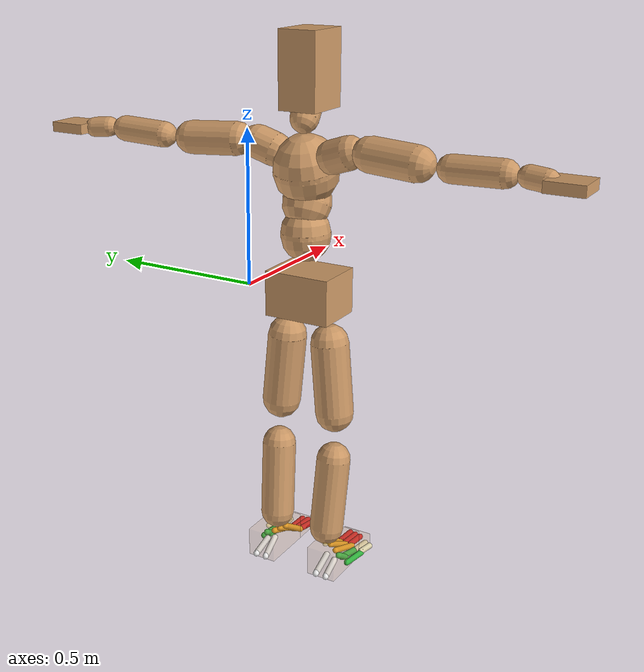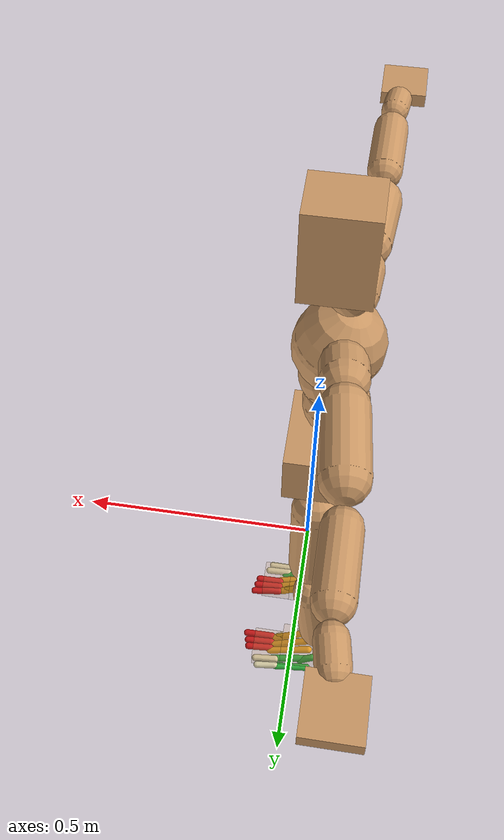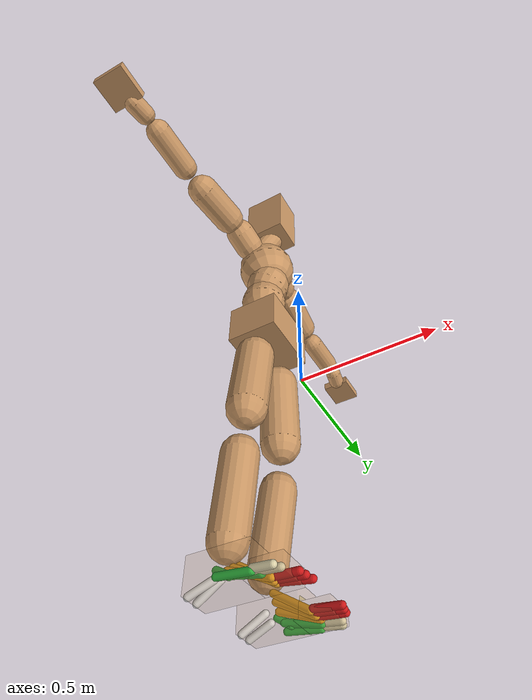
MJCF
<mujoco model="smpl_humanoid_foot_contact">
  <compiler coordinate="local" />
  <option
        timestep="0.001"
        integrator="implicitfast"
        solver="Newton"
        cone="elliptic"
        impratio="10"
        iterations="80"
        tolerance="1e-10"
        noslip_iterations="2"
    >
    <flag nativeccd="enable" multiccd="enable" />
  </option>
  <default>
    <default class="foot_bone_contact">
      <geom
                type="capsule"
                size="0.010"
                density="0"
                condim="6"
                contype="1"
                conaffinity="2"
                friction="1.1 0.03 0.002"
                solref="0.010 1"
                solimp="0.90 0.98 0.0015 0.5 2"
                margin="0.0005"
                rgba="0.10 0.45 0.85 1"
            />
    </default>
    <default class="foot_bone_visual">
      <geom
                type="capsule"
                size="0.008"
                density="0"
                contype="0"
                conaffinity="0"
                rgba="0.95 0.78 0.28 0.45"
            />
    </default>
    <default class="foot_touch_site">
      <site type="box" group="3" rgba="0.9 0.2 0.1 0.18" />
    </default>
  </default>
  <asset>
    <texture
            type="skybox"
            builtin="gradient"
            rgb1=".4 .5 .6"
            rgb2="0 0 0"
            width="100"
            height="100"
        />
    <texture
            builtin="flat"
            height="1278"
            mark="cross"
            markrgb="1 1 1"
            name="texgeom"
            random="0.01"
            rgb1="0.8 0.6 0.4"
            rgb2="0.8 0.6 0.4"
            type="cube"
            width="127"
        />
    <texture
            builtin="checker"
            height="100"
            name="texplane"
            rgb1="0 0 0"
            rgb2="0.8 0.8 0.8"
            type="2d"
            width="100"
        />
    <material
            name="MatPlane"
            reflectance="0.5"
            shininess="1"
            specular="1"
            texrepeat="60 60"
            texture="texplane"
        />
    <material name="geom" texture="texgeom" texuniform="true" />
  </asset>
  <worldbody>
    <light
            cutoff="100"
            diffuse="1 1 1"
            dir="-0 0 -1.3"
            directional="true"
            exponent="1"
            pos="0 0 1.3"
            specular=".1 .1 .1"
        />
    <body name="Pelvis" pos="-0.0018 -0.2233 0.0282">
      <geom
                type="box"
                pos="-0.0055 -0.0000 -0.0121"
                size="0.083 0.1069 0.0722"
                quat="1.0000 0.0000 0.0000 0.0000"
                density="1000"
                conaffinity="1"
                condim="3"
                contype="7"
                margin="0.001"
                rgba="0.8 0.6 .4 1"
            />
      <body name="L_Hip" pos="-0.0068 0.0695 -0.0914">
        <joint
                    name="L_Hip_x"
                    type="hinge"
                    pos="0 0 0"
                    axis="1 0 0"
                    stiffness="800"
                    damping="80"
                    armature="0.02"
                    range="-180.0000 180.0000"
                    limited="true"
                />
        <joint
                    name="L_Hip_y"
                    type="hinge"
                    pos="0 0 0"
                    axis="0 1 0"
                    stiffness="800"
                    damping="80"
                    armature="0.02"
                    range="-180.0000 180.0000"
                    limited="true"
                />
        <joint
                    name="L_Hip_z"
                    type="hinge"
                    pos="0 0 0"
                    axis="0 0 1"
                    stiffness="800"
                    damping="80"
                    armature="0.02"
                    range="-180.0000 180.0000"
                    limited="true"
                />
        <geom
                    type="capsule"
                    contype="1"
                    conaffinity="1"
                    density="2040.816327"
                    fromto="-0.0009 0.0069 -0.0750 -0.0036 0.0274 -0.3002"
                    size="0.0615"
                    condim="3"
                    margin="0.001"
                    rgba="0.8 0.6 .4 1"
                />
        <body name="L_Knee" pos="-0.0045 0.0343 -0.3752">
          <joint
                        name="L_Knee_x"
                        type="hinge"
                        pos="0 0 0"
                        axis="1 0 0"
                        stiffness="800"
                        damping="80"
                        armature="0.02"
                        range="-180.0000 180.0000"
                        limited="true"
                    />
          <joint
                        name="L_Knee_y"
                        type="hinge"
                        pos="0 0 0"
                        axis="0 1 0"
                        stiffness="800"
                        damping="80"
                        armature="0.02"
                        range="-180.0000 180.0000"
                        limited="true"
                    />
          <joint
                        name="L_Knee_z"
                        type="hinge"
                        pos="0 0 0"
                        axis="0 0 1"
                        stiffness="800"
                        damping="80"
                        armature="0.02"
                        range="-180.0000 180.0000"
                        limited="true"
                    />
          <geom
                        type="capsule"
                        contype="1"
                        conaffinity="1"
                        density="1234.567901"
                        fromto="-0.0087 -0.0027 -0.0796 -0.0350 -0.0109 -0.3184"
                        size="0.0541"
                        condim="3"
                        margin="0.001"
                        rgba="0.8 0.6 .4 1"
                    />
          <body name="L_Ankle" pos="-0.0437 -0.0136 -0.398">
            <joint
                            name="L_Ankle_x"
                            type="hinge"
                            pos="0 0 0"
                            axis="1 0 0"
                            stiffness="800"
                            damping="80"
                            armature="0.02"
                            range="-180.0000 180.0000"
                            limited="true"
                        />
            <joint
                            name="L_Ankle_y"
                            type="hinge"
                            pos="0 0 0"
                            axis="0 1 0"
                            stiffness="800"
                            damping="80"
                            armature="0.02"
                            range="-180.0000 180.0000"
                            limited="true"
                        />
            <joint
                            name="L_Ankle_z"
                            type="hinge"
                            pos="0 0 0"
                            axis="0 0 1"
                            stiffness="800"
                            damping="80"
                            armature="0.02"
                            range="-180.0000 180.0000"
                            limited="true"
                        />
            <geom
                            name="L_foot_inertial_visual"
                            type="box"
                            pos="0.0242 0.0233 -0.0239"
                            size="0.085 0.0483 0.0464"
                            quat="1.0000 0.0000 0.0000 0.0000"
                            density="1000"
                            conaffinity="0"
                            condim="3"
                            contype="0"
                            margin="0.001"
                            rgba="0.8 0.6 .4 0.18"
                        />
            <body name="L_bones_medial_metatarsal" pos="0.065 0.024 -0.058">
              <inertial
                                pos="0.020 -0.012 0.006"
                                mass="0.28"
                                diaginertia="0.0008 0.0016 0.0014"
                            />

              <geom
                                name="L_metatarsal_1"
                                class="foot_bone_contact"
                                fromto="-0.030 -0.036 0.070  0.070 -0.035 0.006"
                                rgba="0.95 0.64 0.10 1"
                            />
              <geom
                                name="L_metatarsal_2"
                                class="foot_bone_contact"
                                fromto="-0.034 -0.016 0.058  0.074 -0.015 0.001"
                                rgba="0.95 0.64 0.10 1"
                            />
              <geom
                                name="L_metatarsal_3"
                                class="foot_bone_contact"
                                fromto="-0.036 0.004 0.042  0.078 0.004 0.000"
                                rgba="0.95 0.64 0.10 1"
                            />

              <geom
                                name="L_talus_visual"
                                class="foot_bone_visual"
                                fromto="-0.090 -0.006 0.092  -0.040 -0.006 0.076"
                            />
              <geom
                                name="L_navicular_visual"
                                class="foot_bone_visual"
                                fromto="-0.054 -0.026 0.084  -0.010 -0.028 0.064"
                            />
              <geom
                                name="L_cuneiform_visual"
                                class="foot_bone_visual"
                                fromto="-0.014 -0.028 0.064  0.030 -0.030 0.040"
                            />
              <geom
                                name="L_medial_arch_ridge_visual"
                                class="foot_bone_visual"
                                size="0.006"
                                fromto="-0.072 -0.034 0.030  -0.020 -0.038 0.092"
                            />
              <geom
                                name="L_medial_arch_drop_visual"
                                class="foot_bone_visual"
                                size="0.006"
                                fromto="-0.020 -0.038 0.092  0.070 -0.036 0.018"
                            />

              <site
                                name="L_medial_metatarsal_touch"
                                class="foot_touch_site"
                                pos="0.020 -0.016 -0.004"
                                size="0.070 0.035 0.004"
                            />

              <body name="L_bones_heel" pos="-0.070 0.000 0.000">
                <joint
                                    name="L_heel_x"
                                    type="hinge"
                                    pos="0 0 0"
                                    axis="1 0 0"
                                    damping="0.35"
                                    armature="0.0006"
                                />
                <joint
                                    name="L_heel_y"
                                    type="hinge"
                                    pos="0 0 0"
                                    axis="0 1 0"
                                    damping="0.35"
                                    armature="0.0006"
                                />
                <joint
                                    name="L_heel_z"
                                    type="hinge"
                                    pos="0 0 0"
                                    axis="0 0 1"
                                    damping="0.35"
                                    armature="0.0006"
                                />
                <inertial
                                    pos="-0.030 0.000 0.000"
                                    mass="0.18"
                                    diaginertia="0.0005 0.0008 0.0008"
                                />
                <geom
                                    name="L_calcaneus_medial"
                                    class="foot_bone_contact"
                                    fromto="-0.058 -0.018 -0.002  0.006 -0.014 0.036"
                                    rgba="0.92 0.92 0.92 1"
                                />
                <geom
                                    name="L_calcaneus_lateral"
                                    class="foot_bone_contact"
                                    fromto="-0.058 0.018 -0.002  0.006 0.014 0.024"
                                    rgba="0.92 0.92 0.92 1"
                                />
                <site
                                    name="L_heel_touch"
                                    class="foot_touch_site"
                                    pos="-0.028 0.000 -0.006"
                                    size="0.060 0.040 0.004"
                                />
              </body>

              <body name="L_bones_lateral_metatarsal" pos="-0.032 0.028 0.000">
                <joint
                                    name="L_lateral_metatarsal_x"
                                    type="hinge"
                                    pos="0 0 0"
                                    axis="1 0 0"
                                    damping="0.22"
                                    armature="0.0005"
                                />
                <joint
                                    name="L_lateral_metatarsal_y"
                                    type="hinge"
                                    pos="0 0 0"
                                    axis="0 1 0"
                                    damping="0.22"
                                    armature="0.0005"
                                />
                <joint
                                    name="L_lateral_metatarsal_z"
                                    type="hinge"
                                    pos="0 0 0"
                                    axis="0 0 1"
                                    damping="0.22"
                                    armature="0.0005"
                                />
                <inertial
                                    pos="0.040 0.006 0.000"
                                    mass="0.20"
                                    diaginertia="0.0006 0.0012 0.0010"
                                />
                <geom
                                    name="L_cuboid"
                                    class="foot_bone_contact"
                                    fromto="-0.020 -0.004 0.038  0.018 0.000 0.014"
                                    rgba="0.20 0.72 0.25 1"
                                />
                <geom
                                    name="L_metatarsal_4"
                                    class="foot_bone_contact"
                                    fromto="0.000 -0.004 0.022  0.100 0.000 0.000"
                                    rgba="0.20 0.72 0.25 1"
                                />
                <geom
                                    name="L_metatarsal_5"
                                    class="foot_bone_contact"
                                    fromto="-0.004 0.018 0.010  0.088 0.022 -0.001"
                                    rgba="0.20 0.72 0.25 1"
                                />
                <site
                                    name="L_lateral_metatarsal_touch"
                                    class="foot_touch_site"
                                    pos="0.040 0.006 -0.006"
                                    size="0.075 0.035 0.004"
                                />

                <body name="L_bones_lateral_phalanges" pos="0.090 0.010 0.000">
                  <joint
                                        name="L_lateral_phalanges_x"
                                        type="hinge"
                                        pos="0 0 0"
                                        axis="1 0 0"
                                        damping="0.18"
                                        armature="0.0004"
                                    />
                  <joint
                                        name="L_lateral_phalanges_y"
                                        type="hinge"
                                        pos="0 0 0"
                                        axis="0 1 0"
                                        damping="0.18"
                                        armature="0.0004"
                                    />
                  <joint
                                        name="L_lateral_phalanges_z"
                                        type="hinge"
                                        pos="0 0 0"
                                        axis="0 0 1"
                                        damping="0.18"
                                        armature="0.0004"
                                    />
                  <inertial
                                        pos="0.030 0.004 0.000"
                                        mass="0.075"
                                        diaginertia="0.00015 0.00030 0.00025"
                                    />
                  <geom
                                        name="L_phalanx_4"
                                        class="foot_bone_contact"
                                        fromto="0.000 -0.006 0.006  0.060 -0.004 -0.001"
                                        rgba="0.88 0.84 0.68 1"
                                    />
                  <geom
                                        name="L_phalanx_5"
                                        class="foot_bone_contact"
                                        fromto="0.000 0.012 0.004  0.052 0.016 -0.002"
                                        rgba="0.88 0.84 0.68 1"
                                    />
                  <site
                                        name="L_lateral_phalanges_touch"
                                        class="foot_touch_site"
                                        pos="0.030 0.004 -0.006"
                                        size="0.055 0.025 0.004"
                                    />
                </body>
              </body>

              <body name="L_bones_medial_phalanges" pos="0.078 -0.006 0.000">
                <joint
                                    name="L_medial_phalanges_x"
                                    type="hinge"
                                    pos="0 0 0"
                                    axis="1 0 0"
                                    damping="0.18"
                                    armature="0.0004"
                                />
                <joint
                                    name="L_medial_phalanges_y"
                                    type="hinge"
                                    pos="0 0 0"
                                    axis="0 1 0"
                                    damping="0.18"
                                    armature="0.0004"
                                />
                <joint
                                    name="L_medial_phalanges_z"
                                    type="hinge"
                                    pos="0 0 0"
                                    axis="0 0 1"
                                    damping="0.18"
                                    armature="0.0004"
                                />
                <inertial
                                    pos="0.036 -0.014 0.000"
                                    mass="0.11"
                                    diaginertia="0.00020 0.00042 0.00035"
                                />
                <geom
                                    name="L_phalanx_1"
                                    class="foot_bone_contact"
                                    fromto="0.000 -0.032 0.008  0.076 -0.036 -0.002"
                                    rgba="0.82 0.10 0.10 1"
                                />
                <geom
                                    name="L_phalanx_2"
                                    class="foot_bone_contact"
                                    fromto="0.000 -0.014 0.006  0.070 -0.014 -0.001"
                                    rgba="0.82 0.10 0.10 1"
                                />
                <geom
                                    name="L_phalanx_3"
                                    class="foot_bone_contact"
                                    fromto="0.000 0.004 0.004  0.066 0.006 -0.001"
                                    rgba="0.82 0.10 0.10 1"
                                />
                <site
                                    name="L_medial_phalanges_touch"
                                    class="foot_touch_site"
                                    pos="0.036 -0.014 -0.006"
                                    size="0.070 0.045 0.004"
                                />
              </body>
            </body>
            <body name="L_Toe" pos="0.1193 0.0264 -0.0558">
              <joint
                                name="L_Toe_x"
                                type="hinge"
                                pos="0 0 0"
                                axis="1 0 0"
                                stiffness="500"
                                damping="50"
                                armature="0.02"
                                range="-180.0000 180.0000"
                                limited="true"
                            />
              <joint
                                name="L_Toe_y"
                                type="hinge"
                                pos="0 0 0"
                                axis="0 1 0"
                                stiffness="500"
                                damping="50"
                                armature="0.02"
                                range="-180.0000 180.0000"
                                limited="true"
                            />
              <joint
                                name="L_Toe_z"
                                type="hinge"
                                pos="0 0 0"
                                axis="0 0 1"
                                stiffness="500"
                                damping="50"
                                armature="0.02"
                                range="-180.0000 180.0000"
                                limited="true"
                            />
              <geom
                                name="L_toe_inertial_visual"
                                type="box"
                                pos="0.0248 -0.0030 0.0055"
                                size="0.0496 0.0478 0.02"
                                quat="1.0000 0.0000 0.0000 0.0000"
                                density="1000"
                                conaffinity="0"
                                condim="3"
                                contype="0"
                                margin="0.001"
                                rgba="0.8 0.6 .4 0.12"
                            />
            </body>
          </body>
        </body>
      </body>
      <body name="R_Hip" pos="-0.0043 -0.0677 -0.0905">
        <joint
                    name="R_Hip_x"
                    type="hinge"
                    pos="0 0 0"
                    axis="1 0 0"
                    stiffness="800"
                    damping="80"
                    armature="0.02"
                    range="-180.0000 180.0000"
                    limited="true"
                />
        <joint
                    name="R_Hip_y"
                    type="hinge"
                    pos="0 0 0"
                    axis="0 1 0"
                    stiffness="800"
                    damping="80"
                    armature="0.02"
                    range="-180.0000 180.0000"
                    limited="true"
                />
        <joint
                    name="R_Hip_z"
                    type="hinge"
                    pos="0 0 0"
                    axis="0 0 1"
                    stiffness="800"
                    damping="80"
                    armature="0.02"
                    range="-180.0000 180.0000"
                    limited="true"
                />
        <geom
                    type="capsule"
                    contype="1"
                    conaffinity="1"
                    density="2040.816327"
                    fromto="-0.0018 -0.0077 -0.0765 -0.0071 -0.0306 -0.3061"
                    size="0.0606"
                    condim="3"
                    margin="0.001"
                    rgba="0.8 0.6 .4 1"
                />
        <body name="R_Knee" pos="-0.0089 -0.0383 -0.3826">
          <joint
                        name="R_Knee_x"
                        type="hinge"
                        pos="0 0 0"
                        axis="1 0 0"
                        stiffness="800"
                        damping="80"
                        armature="0.02"
                        range="-180.0000 180.0000"
                        limited="true"
                    />
          <joint
                        name="R_Knee_y"
                        type="hinge"
                        pos="0 0 0"
                        axis="0 1 0"
                        stiffness="800"
                        damping="80"
                        armature="0.02"
                        range="-180.0000 180.0000"
                        limited="true"
                    />
          <joint
                        name="R_Knee_z"
                        type="hinge"
                        pos="0 0 0"
                        axis="0 0 1"
                        stiffness="800"
                        damping="80"
                        armature="0.02"
                        range="-180.0000 180.0000"
                        limited="true"
                    />
          <geom
                        type="capsule"
                        contype="1"
                        conaffinity="1"
                        density="1234.567901"
                        fromto="-0.0085 0.0032 -0.0797 -0.0338 0.0126 -0.3187"
                        size="0.0541"
                        condim="3"
                        margin="0.001"
                        rgba="0.8 0.6 .4 1"
                    />
          <body name="R_Ankle" pos="-0.0423 0.0158 -0.3984">
            <joint
                            name="R_Ankle_x"
                            type="hinge"
                            pos="0 0 0"
                            axis="1 0 0"
                            stiffness="800"
                            damping="80"
                            armature="0.02"
                            range="-180.0000 180.0000"
                            limited="true"
                        />
            <joint
                            name="R_Ankle_y"
                            type="hinge"
                            pos="0 0 0"
                            axis="0 1 0"
                            stiffness="800"
                            damping="80"
                            armature="0.02"
                            range="-180.0000 180.0000"
                            limited="true"
                        />
            <joint
                            name="R_Ankle_z"
                            type="hinge"
                            pos="0 0 0"
                            axis="0 0 1"
                            stiffness="800"
                            damping="80"
                            armature="0.02"
                            range="-180.0000 180.0000"
                            limited="true"
                        />
            <geom
                            name="R_foot_inertial_visual"
                            type="box"
                            pos="0.0256 -0.0212 -0.0174"
                            size="0.0865 0.0483 0.0478"
                            quat="1.0000 0.0000 0.0000 0.0000"
                            density="1000"
                            conaffinity="0"
                            condim="3"
                            contype="0"
                            margin="0.001"
                            rgba="0.8 0.6 .4 0.18"
                        />
            <body name="R_bones_medial_metatarsal" pos="0.065 -0.024 -0.053">
              <inertial
                                pos="0.020 0.012 0.006"
                                mass="0.28"
                                diaginertia="0.0008 0.0016 0.0014"
                            />

              <geom
                                name="R_metatarsal_1"
                                class="foot_bone_contact"
                                fromto="-0.030 0.036 0.070  0.070 0.035 0.006"
                                rgba="0.95 0.64 0.10 1"
                            />
              <geom
                                name="R_metatarsal_2"
                                class="foot_bone_contact"
                                fromto="-0.034 0.016 0.058  0.074 0.015 0.001"
                                rgba="0.95 0.64 0.10 1"
                            />
              <geom
                                name="R_metatarsal_3"
                                class="foot_bone_contact"
                                fromto="-0.036 -0.004 0.042  0.078 -0.004 0.000"
                                rgba="0.95 0.64 0.10 1"
                            />

              <geom
                                name="R_talus_visual"
                                class="foot_bone_visual"
                                fromto="-0.090 0.006 0.092  -0.040 0.006 0.076"
                            />
              <geom
                                name="R_navicular_visual"
                                class="foot_bone_visual"
                                fromto="-0.054 0.026 0.084  -0.010 0.028 0.064"
                            />
              <geom
                                name="R_cuneiform_visual"
                                class="foot_bone_visual"
                                fromto="-0.014 0.028 0.064  0.030 0.030 0.040"
                            />
              <geom
                                name="R_medial_arch_ridge_visual"
                                class="foot_bone_visual"
                                size="0.006"
                                fromto="-0.072 0.034 0.030  -0.020 0.038 0.092"
                            />
              <geom
                                name="R_medial_arch_drop_visual"
                                class="foot_bone_visual"
                                size="0.006"
                                fromto="-0.020 0.038 0.092  0.070 0.036 0.018"
                            />

              <site
                                name="R_medial_metatarsal_touch"
                                class="foot_touch_site"
                                pos="0.020 0.016 -0.004"
                                size="0.070 0.035 0.004"
                            />

              <body name="R_bones_heel" pos="-0.070 0.000 0.000">
                <joint
                                    name="R_heel_x"
                                    type="hinge"
                                    pos="0 0 0"
                                    axis="1 0 0"
                                    damping="0.35"
                                    armature="0.0006"
                                />
                <joint
                                    name="R_heel_y"
                                    type="hinge"
                                    pos="0 0 0"
                                    axis="0 1 0"
                                    damping="0.35"
                                    armature="0.0006"
                                />
                <joint
                                    name="R_heel_z"
                                    type="hinge"
                                    pos="0 0 0"
                                    axis="0 0 1"
                                    damping="0.35"
                                    armature="0.0006"
                                />
                <inertial
                                    pos="-0.030 0.000 0.000"
                                    mass="0.18"
                                    diaginertia="0.0005 0.0008 0.0008"
                                />
                <geom
                                    name="R_calcaneus_medial"
                                    class="foot_bone_contact"
                                    fromto="-0.058 0.018 -0.002  0.006 0.014 0.036"
                                    rgba="0.92 0.92 0.92 1"
                                />
                <geom
                                    name="R_calcaneus_lateral"
                                    class="foot_bone_contact"
                                    fromto="-0.058 -0.018 -0.002  0.006 -0.014 0.024"
                                    rgba="0.92 0.92 0.92 1"
                                />
                <site
                                    name="R_heel_touch"
                                    class="foot_touch_site"
                                    pos="-0.028 0.000 -0.006"
                                    size="0.060 0.040 0.004"
                                />
              </body>

              <body name="R_bones_lateral_metatarsal" pos="-0.032 -0.028 0.000">
                <joint
                                    name="R_lateral_metatarsal_x"
                                    type="hinge"
                                    pos="0 0 0"
                                    axis="1 0 0"
                                    damping="0.22"
                                    armature="0.0005"
                                />
                <joint
                                    name="R_lateral_metatarsal_y"
                                    type="hinge"
                                    pos="0 0 0"
                                    axis="0 1 0"
                                    damping="0.22"
                                    armature="0.0005"
                                />
                <joint
                                    name="R_lateral_metatarsal_z"
                                    type="hinge"
                                    pos="0 0 0"
                                    axis="0 0 1"
                                    damping="0.22"
                                    armature="0.0005"
                                />
                <inertial
                                    pos="0.040 -0.006 0.000"
                                    mass="0.20"
                                    diaginertia="0.0006 0.0012 0.0010"
                                />
                <geom
                                    name="R_cuboid"
                                    class="foot_bone_contact"
                                    fromto="-0.020 0.004 0.038  0.018 0.000 0.014"
                                    rgba="0.20 0.72 0.25 1"
                                />
                <geom
                                    name="R_metatarsal_4"
                                    class="foot_bone_contact"
                                    fromto="0.000 0.004 0.022  0.100 0.000 0.000"
                                    rgba="0.20 0.72 0.25 1"
                                />
                <geom
                                    name="R_metatarsal_5"
                                    class="foot_bone_contact"
                                    fromto="-0.004 -0.018 0.010  0.088 -0.022 -0.001"
                                    rgba="0.20 0.72 0.25 1"
                                />
                <site
                                    name="R_lateral_metatarsal_touch"
                                    class="foot_touch_site"
                                    pos="0.040 -0.006 -0.006"
                                    size="0.075 0.035 0.004"
                                />

                <body name="R_bones_lateral_phalanges" pos="0.090 -0.010 0.000">
                  <joint
                                        name="R_lateral_phalanges_x"
                                        type="hinge"
                                        pos="0 0 0"
                                        axis="1 0 0"
                                        damping="0.18"
                                        armature="0.0004"
                                    />
                  <joint
                                        name="R_lateral_phalanges_y"
                                        type="hinge"
                                        pos="0 0 0"
                                        axis="0 1 0"
                                        damping="0.18"
                                        armature="0.0004"
                                    />
                  <joint
                                        name="R_lateral_phalanges_z"
                                        type="hinge"
                                        pos="0 0 0"
                                        axis="0 0 1"
                                        damping="0.18"
                                        armature="0.0004"
                                    />
                  <inertial
                                        pos="0.030 -0.004 0.000"
                                        mass="0.075"
                                        diaginertia="0.00015 0.00030 0.00025"
                                    />
                  <geom
                                        name="R_phalanx_4"
                                        class="foot_bone_contact"
                                        fromto="0.000 0.006 0.006  0.060 0.004 -0.001"
                                        rgba="0.88 0.84 0.68 1"
                                    />
                  <geom
                                        name="R_phalanx_5"
                                        class="foot_bone_contact"
                                        fromto="0.000 -0.012 0.004  0.052 -0.016 -0.002"
                                        rgba="0.88 0.84 0.68 1"
                                    />
                  <site
                                        name="R_lateral_phalanges_touch"
                                        class="foot_touch_site"
                                        pos="0.030 -0.004 -0.006"
                                        size="0.055 0.025 0.004"
                                    />
                </body>
              </body>

              <body name="R_bones_medial_phalanges" pos="0.078 0.006 0.000">
                <joint
                                    name="R_medial_phalanges_x"
                                    type="hinge"
                                    pos="0 0 0"
                                    axis="1 0 0"
                                    damping="0.18"
                                    armature="0.0004"
                                />
                <joint
                                    name="R_medial_phalanges_y"
                                    type="hinge"
                                    pos="0 0 0"
                                    axis="0 1 0"
                                    damping="0.18"
                                    armature="0.0004"
                                />
                <joint
                                    name="R_medial_phalanges_z"
                                    type="hinge"
                                    pos="0 0 0"
                                    axis="0 0 1"
                                    damping="0.18"
                                    armature="0.0004"
                                />
                <inertial
                                    pos="0.036 0.014 0.000"
                                    mass="0.11"
                                    diaginertia="0.00020 0.00042 0.00035"
                                />
                <geom
                                    name="R_phalanx_1"
                                    class="foot_bone_contact"
                                    fromto="0.000 0.032 0.008  0.076 0.036 -0.002"
                                    rgba="0.82 0.10 0.10 1"
                                />
                <geom
                                    name="R_phalanx_2"
                                    class="foot_bone_contact"
                                    fromto="0.000 0.014 0.006  0.070 0.014 -0.001"
                                    rgba="0.82 0.10 0.10 1"
                                />
                <geom
                                    name="R_phalanx_3"
                                    class="foot_bone_contact"
                                    fromto="0.000 -0.004 0.004  0.066 -0.006 -0.001"
                                    rgba="0.82 0.10 0.10 1"
                                />
                <site
                                    name="R_medial_phalanges_touch"
                                    class="foot_touch_site"
                                    pos="0.036 0.014 -0.006"
                                    size="0.070 0.045 0.004"
                                />
              </body>
            </body>
            <body name="R_Toe" pos="0.1233 -0.0254 -0.0481">
              <joint
                                name="R_Toe_x"
                                type="hinge"
                                pos="0 0 0"
                                axis="1 0 0"
                                stiffness="500"
                                damping="50"
                                armature="0.02"
                                range="-180.0000 180.0000"
                                limited="true"
                            />
              <joint
                                name="R_Toe_y"
                                type="hinge"
                                pos="0 0 0"
                                axis="0 1 0"
                                stiffness="500"
                                damping="50"
                                armature="0.02"
                                range="-180.0000 180.0000"
                                limited="true"
                            />
              <joint
                                name="R_Toe_z"
                                type="hinge"
                                pos="0 0 0"
                                axis="0 0 1"
                                stiffness="500"
                                damping="50"
                                armature="0.02"
                                range="-180.0000 180.0000"
                                limited="true"
                            />
              <geom
                                name="R_toe_inertial_visual"
                                type="box"
                                pos="0.0227 0.0042 0.0045"
                                size="0.0493 0.0479 0.0216"
                                quat="1.0000 0.0000 0.0000 0.0000"
                                density="1000"
                                conaffinity="0"
                                condim="3"
                                contype="0"
                                margin="0.001"
                                rgba="0.8 0.6 .4 0.12"
                            />
            </body>
          </body>
        </body>
      </body>
      <body name="Torso" pos="-0.0267 -0.0025 0.109">
        <joint
                    name="Torso_x"
                    type="hinge"
                    pos="0 0 0"
                    axis="1 0 0"
                    stiffness="1000"
                    damping="100"
                    armature="0.02"
                    range="-180.0000 180.0000"
                    limited="true"
                />
        <joint
                    name="Torso_y"
                    type="hinge"
                    pos="0 0 0"
                    axis="0 1 0"
                    stiffness="1000"
                    damping="100"
                    armature="0.02"
                    range="-180.0000 180.0000"
                    limited="true"
                />
        <joint
                    name="Torso_z"
                    type="hinge"
                    pos="0 0 0"
                    axis="0 0 1"
                    stiffness="1000"
                    damping="100"
                    armature="0.02"
                    range="-180.0000 180.0000"
                    limited="true"
                />
        <geom
                    type="capsule"
                    contype="1"
                    conaffinity="1"
                    density="2040.816327"
                    fromto="0.0005 0.0025 0.0608 0.0006 0.0030 0.0743"
                    size="0.0769"
                    condim="3"
                    margin="0.001"
                    rgba="0.8 0.6 .4 1"
                />
        <body name="Spine" pos="0.0011 0.0055 0.1352">
          <joint
                        name="Spine_x"
                        type="hinge"
                        pos="0 0 0"
                        axis="1 0 0"
                        stiffness="1000"
                        damping="100"
                        armature="0.02"
                        range="-180.0000 180.0000"
                        limited="true"
                    />
          <joint
                        name="Spine_y"
                        type="hinge"
                        pos="0 0 0"
                        axis="0 1 0"
                        stiffness="1000"
                        damping="100"
                        armature="0.02"
                        range="-180.0000 180.0000"
                        limited="true"
                    />
          <joint
                        name="Spine_z"
                        type="hinge"
                        pos="0 0 0"
                        axis="0 0 1"
                        stiffness="1000"
                        damping="100"
                        armature="0.02"
                        range="-180.0000 180.0000"
                        limited="true"
                    />
          <geom
                        type="capsule"
                        contype="1"
                        conaffinity="1"
                        density="2040.816327"
                        fromto="0.0114 0.0007 0.0238 0.0140 0.0008 0.0291"
                        size="0.0755"
                        condim="3"
                        margin="0.001"
                        rgba="0.8 0.6 .4 1"
                    />
          <body name="Chest" pos="0.0254 0.0015 0.0529">
            <joint
                            name="Chest_x"
                            type="hinge"
                            pos="0 0 0"
                            axis="1 0 0"
                            stiffness="1000"
                            damping="100"
                            armature="0.02"
                            range="-180.0000 180.0000"
                            limited="true"
                        />
            <joint
                            name="Chest_y"
                            type="hinge"
                            pos="0 0 0"
                            axis="0 1 0"
                            stiffness="1000"
                            damping="100"
                            armature="0.02"
                            range="-180.0000 180.0000"
                            limited="true"
                        />
            <joint
                            name="Chest_z"
                            type="hinge"
                            pos="0 0 0"
                            axis="0 0 1"
                            stiffness="1000"
                            damping="100"
                            armature="0.02"
                            range="-180.0000 180.0000"
                            limited="true"
                        />
            <geom
                            type="capsule"
                            contype="1"
                            conaffinity="1"
                            density="2040.816327"
                            fromto="-0.0173 -0.0009 0.0682 -0.0212 -0.0010 0.0833"
                            size="0.1002"
                            condim="3"
                            margin="0.001"
                            rgba="0.8 0.6 .4 1"
                        />
            <body name="Neck" pos="-0.0429 -0.0028 0.2139">
              <joint
                                name="Neck_x"
                                type="hinge"
                                pos="0 0 0"
                                axis="1 0 0"
                                stiffness="500"
                                damping="50"
                                armature="0.02"
                                range="-180.0000 180.0000"
                                limited="true"
                            />
              <joint
                                name="Neck_y"
                                type="hinge"
                                pos="0 0 0"
                                axis="0 1 0"
                                stiffness="500"
                                damping="50"
                                armature="0.02"
                                range="-180.0000 180.0000"
                                limited="true"
                            />
              <joint
                                name="Neck_z"
                                type="hinge"
                                pos="0 0 0"
                                axis="0 0 1"
                                stiffness="500"
                                damping="50"
                                armature="0.02"
                                range="-180.0000 180.0000"
                                limited="true"
                            />
              <geom
                                type="capsule"
                                contype="1"
                                conaffinity="1"
                                density="1000"
                                fromto="0.0103 0.0010 0.0130 0.0411 0.0041 0.0520"
                                size="0.0436"
                                condim="3"
                                margin="0.001"
                                rgba="0.8 0.6 .4 1"
                            />
              <body name="Head" pos="0.0513 0.0052 0.065">
                <joint
                                    name="Head_x"
                                    type="hinge"
                                    pos="0 0 0"
                                    axis="1 0 0"
                                    stiffness="500"
                                    damping="50"
                                    armature="0.02"
                                    range="-180.0000 180.0000"
                                    limited="true"
                                />
                <joint
                                    name="Head_y"
                                    type="hinge"
                                    pos="0 0 0"
                                    axis="0 1 0"
                                    stiffness="500"
                                    damping="50"
                                    armature="0.02"
                                    range="-180.0000 180.0000"
                                    limited="true"
                                />
                <joint
                                    name="Head_z"
                                    type="hinge"
                                    pos="0 0 0"
                                    axis="0 0 1"
                                    stiffness="500"
                                    damping="50"
                                    armature="0.02"
                                    range="-180.0000 180.0000"
                                    limited="true"
                                />
                <geom
                                    type="box"
                                    pos="-0.0116 -0.0042 0.0876"
                                    size="0.076 0.0606 0.1154"
                                    quat="1.0000 0.0000 0.0000 0.0000"
                                    density="1000"
                                    conaffinity="1"
                                    condim="3"
                                    contype="7"
                                    margin="0.001"
                                    rgba="0.8 0.6 .4 1"
                                />
              </body>
            </body>
            <body name="L_Thorax" pos="-0.0341 0.0788 0.1217">
              <joint
                                name="L_Thorax_x"
                                type="hinge"
                                pos="0 0 0"
                                axis="1 0 0"
                                stiffness="500"
                                damping="50"
                                armature="0.02"
                                range="-180.0000 180.0000"
                                limited="true"
                            />
              <joint
                                name="L_Thorax_y"
                                type="hinge"
                                pos="0 0 0"
                                axis="0 1 0"
                                stiffness="500"
                                damping="50"
                                armature="0.02"
                                range="-180.0000 180.0000"
                                limited="true"
                            />
              <joint
                                name="L_Thorax_z"
                                type="hinge"
                                pos="0 0 0"
                                axis="0 0 1"
                                stiffness="500"
                                damping="50"
                                armature="0.02"
                                range="-180.0000 180.0000"
                                limited="true"
                            />
              <geom
                                type="capsule"
                                contype="1"
                                conaffinity="1"
                                density="1000"
                                fromto="-0.0018 0.0182 0.0061 -0.0071 0.0728 0.0244"
                                size="0.0521"
                                condim="3"
                                margin="0.001"
                                rgba="0.8 0.6 .4 1"
                            />
              <body name="L_Shoulder" pos="-0.0089 0.091 0.0305">
                <joint
                                    name="L_Shoulder_x"
                                    type="hinge"
                                    pos="0 0 0"
                                    axis="1 0 0"
                                    stiffness="500"
                                    damping="50"
                                    armature="0.02"
                                    range="-180.0000 180.0000"
                                    limited="true"
                                />
                <joint
                                    name="L_Shoulder_y"
                                    type="hinge"
                                    pos="0 0 0"
                                    axis="0 1 0"
                                    stiffness="500"
                                    damping="50"
                                    armature="0.02"
                                    range="-180.0000 180.0000"
                                    limited="true"
                                />
                <joint
                                    name="L_Shoulder_z"
                                    type="hinge"
                                    pos="0 0 0"
                                    axis="0 0 1"
                                    stiffness="500"
                                    damping="50"
                                    armature="0.02"
                                    range="-180.0000 180.0000"
                                    limited="true"
                                />
                <geom
                                    type="capsule"
                                    contype="1"
                                    conaffinity="1"
                                    density="1000"
                                    fromto="-0.0055 0.0519 -0.0026 -0.0220 0.2077 -0.0102"
                                    size="0.0517"
                                    condim="3"
                                    margin="0.001"
                                    rgba="0.8 0.6 .4 1"
                                />
                <body name="L_Elbow" pos="-0.0275 0.2596 -0.0128">
                  <joint
                                        name="L_Elbow_x"
                                        type="hinge"
                                        pos="0 0 0"
                                        axis="1 0 0"
                                        stiffness="500"
                                        damping="50"
                                        armature="0.02"
                                        range="-180.0000 180.0000"
                                        limited="true"
                                    />
                  <joint
                                        name="L_Elbow_y"
                                        type="hinge"
                                        pos="0 0 0"
                                        axis="0 1 0"
                                        stiffness="500"
                                        damping="50"
                                        armature="0.02"
                                        range="-180.0000 180.0000"
                                        limited="true"
                                    />
                  <joint
                                        name="L_Elbow_z"
                                        type="hinge"
                                        pos="0 0 0"
                                        axis="0 0 1"
                                        stiffness="500"
                                        damping="50"
                                        armature="0.02"
                                        range="-180.0000 180.0000"
                                        limited="true"
                                    />
                  <geom
                                        type="capsule"
                                        contype="1"
                                        conaffinity="1"
                                        density="1000"
                                        fromto="-0.0002 0.0498 0.0018 -0.0009 0.1994 0.0072"
                                        size="0.0405"
                                        condim="3"
                                        margin="0.001"
                                        rgba="0.8 0.6 .4 1"
                                    />
                  <body name="L_Wrist" pos="-0.0012 0.2492 0.009">
                    <joint
                                            name="L_Wrist_x"
                                            type="hinge"
                                            pos="0 0 0"
                                            axis="1 0 0"
                                            stiffness="300"
                                            damping="30"
                                            armature="0.02"
                                            range="-180.0000 180.0000"
                                            limited="true"
                                        />
                    <joint
                                            name="L_Wrist_y"
                                            type="hinge"
                                            pos="0 0 0"
                                            axis="0 1 0"
                                            stiffness="300"
                                            damping="30"
                                            armature="0.02"
                                            range="-180.0000 180.0000"
                                            limited="true"
                                        />
                    <joint
                                            name="L_Wrist_z"
                                            type="hinge"
                                            pos="0 0 0"
                                            axis="0 0 1"
                                            stiffness="300"
                                            damping="30"
                                            armature="0.02"
                                            range="-180.0000 180.0000"
                                            limited="true"
                                        />
                    <geom
                                            type="capsule"
                                            contype="1"
                                            conaffinity="1"
                                            density="1000"
                                            fromto="-0.0030 0.0168 -0.0016 -0.0120 0.0672 -0.0065"
                                            size="0.0318"
                                            condim="3"
                                            margin="0.001"
                                            rgba="0.8 0.6 .4 1"
                                        />
                    <body name="L_Hand" pos="-0.0149 0.084 -0.0082">
                      <joint
                                                name="L_Hand_x"
                                                type="hinge"
                                                pos="0 0 0"
                                                axis="1 0 0"
                                                stiffness="300"
                                                damping="30"
                                                armature="0.02"
                                                range="-180.0000 180.0000"
                                                limited="true"
                                            />
                      <joint
                                                name="L_Hand_y"
                                                type="hinge"
                                                pos="0 0 0"
                                                axis="0 1 0"
                                                stiffness="300"
                                                damping="30"
                                                armature="0.02"
                                                range="-180.0000 180.0000"
                                                limited="true"
                                            />
                      <joint
                                                name="L_Hand_z"
                                                type="hinge"
                                                pos="0 0 0"
                                                axis="0 0 1"
                                                stiffness="300"
                                                damping="30"
                                                armature="0.02"
                                                range="-180.0000 180.0000"
                                                limited="true"
                                            />
                      <geom
                                                type="box"
                                                pos="-0.0058 0.0493 0.0010"
                                                size="0.0538 0.0585 0.0158"
                                                quat="1.0000 0.0000 0.0000 0.0000"
                                                density="1000"
                                                conaffinity="1"
                                                condim="3"
                                                contype="7"
                                                margin="0.001"
                                                rgba="0.8 0.6 .4 1"
                                            />
                    </body>
                  </body>
                </body>
              </body>
            </body>
            <body name="R_Thorax" pos="-0.0386 -0.0818 0.1188">
              <joint
                                name="R_Thorax_x"
                                type="hinge"
                                pos="0 0 0"
                                axis="1 0 0"
                                stiffness="500"
                                damping="50"
                                armature="0.02"
                                range="-180.0000 180.0000"
                                limited="true"
                            />
              <joint
                                name="R_Thorax_y"
                                type="hinge"
                                pos="0 0 0"
                                axis="0 1 0"
                                stiffness="500"
                                damping="50"
                                armature="0.02"
                                range="-180.0000 180.0000"
                                limited="true"
                            />
              <joint
                                name="R_Thorax_z"
                                type="hinge"
                                pos="0 0 0"
                                axis="0 0 1"
                                stiffness="500"
                                damping="50"
                                armature="0.02"
                                range="-180.0000 180.0000"
                                limited="true"
                            />
              <geom
                                type="capsule"
                                contype="1"
                                conaffinity="1"
                                density="1000"
                                fromto="-0.0018 -0.0192 0.0065 -0.0073 -0.0768 0.0260"
                                size="0.0511"
                                condim="3"
                                margin="0.001"
                                rgba="0.8 0.6 .4 1"
                            />
              <body name="R_Shoulder" pos="-0.0091 -0.096 0.0326">
                <joint
                                    name="R_Shoulder_x"
                                    type="hinge"
                                    pos="0 0 0"
                                    axis="1 0 0"
                                    stiffness="500"
                                    damping="50"
                                    armature="0.02"
                                    range="-180.0000 180.0000"
                                    limited="true"
                                />
                <joint
                                    name="R_Shoulder_y"
                                    type="hinge"
                                    pos="0 0 0"
                                    axis="0 1 0"
                                    stiffness="500"
                                    damping="50"
                                    armature="0.02"
                                    range="-180.0000 180.0000"
                                    limited="true"
                                />
                <joint
                                    name="R_Shoulder_z"
                                    type="hinge"
                                    pos="0 0 0"
                                    axis="0 0 1"
                                    stiffness="500"
                                    damping="50"
                                    armature="0.02"
                                    range="-180.0000 180.0000"
                                    limited="true"
                                />
                <geom
                                    type="capsule"
                                    contype="1"
                                    conaffinity="1"
                                    density="1000"
                                    fromto="-0.0043 -0.0507 -0.0027 -0.0171 -0.2030 -0.0107"
                                    size="0.0531"
                                    condim="3"
                                    margin="0.001"
                                    rgba="0.8 0.6 .4 1"
                                />
                <body name="R_Elbow" pos="-0.0214 -0.2537 -0.0133">
                  <joint
                                        name="R_Elbow_x"
                                        type="hinge"
                                        pos="0 0 0"
                                        axis="1 0 0"
                                        stiffness="500"
                                        damping="50"
                                        armature="0.02"
                                        range="-180.0000 180.0000"
                                        limited="true"
                                    />
                  <joint
                                        name="R_Elbow_y"
                                        type="hinge"
                                        pos="0 0 0"
                                        axis="0 1 0"
                                        stiffness="500"
                                        damping="50"
                                        armature="0.02"
                                        range="-180.0000 180.0000"
                                        limited="true"
                                    />
                  <joint
                                        name="R_Elbow_z"
                                        type="hinge"
                                        pos="0 0 0"
                                        axis="0 0 1"
                                        stiffness="500"
                                        damping="50"
                                        armature="0.02"
                                        range="-180.0000 180.0000"
                                        limited="true"
                                    />
                  <geom
                                        type="capsule"
                                        contype="1"
                                        conaffinity="1"
                                        density="1000"
                                        fromto="-0.0011 -0.0511 0.0016 -0.0044 -0.2042 0.0062"
                                        size="0.0408"
                                        condim="3"
                                        margin="0.001"
                                        rgba="0.8 0.6 .4 1"
                                    />
                  <body name="R_Wrist" pos="-0.0056 -0.2553 0.0078">
                    <joint
                                            name="R_Wrist_x"
                                            type="hinge"
                                            pos="0 0 0"
                                            axis="1 0 0"
                                            stiffness="300"
                                            damping="30"
                                            armature="0.02"
                                            range="-180.0000 180.0000"
                                            limited="true"
                                        />
                    <joint
                                            name="R_Wrist_y"
                                            type="hinge"
                                            pos="0 0 0"
                                            axis="0 1 0"
                                            stiffness="300"
                                            damping="30"
                                            armature="0.02"
                                            range="-180.0000 180.0000"
                                            limited="true"
                                        />
                    <joint
                                            name="R_Wrist_z"
                                            type="hinge"
                                            pos="0 0 0"
                                            axis="0 0 1"
                                            stiffness="300"
                                            damping="30"
                                            armature="0.02"
                                            range="-180.0000 180.0000"
                                            limited="true"
                                        />
                    <geom
                                            type="capsule"
                                            contype="1"
                                            conaffinity="1"
                                            density="1000"
                                            fromto="-0.0021 -0.0169 -0.0012 -0.0083 -0.0677 -0.0049"
                                            size="0.0326"
                                            condim="3"
                                            margin="0.001"
                                            rgba="0.8 0.6 .4 1"
                                        />
                    <body name="R_Hand" pos="-0.0103 -0.0846 -0.0061">
                      <joint
                                                name="R_Hand_x"
                                                type="hinge"
                                                pos="0 0 0"
                                                axis="1 0 0"
                                                stiffness="300"
                                                damping="30"
                                                armature="0.02"
                                                range="-180.0000 180.0000"
                                                limited="true"
                                            />
                      <joint
                                                name="R_Hand_y"
                                                type="hinge"
                                                pos="0 0 0"
                                                axis="0 1 0"
                                                stiffness="300"
                                                damping="30"
                                                armature="0.02"
                                                range="-180.0000 180.0000"
                                                limited="true"
                                            />
                      <joint
                                                name="R_Hand_z"
                                                type="hinge"
                                                pos="0 0 0"
                                                axis="0 0 1"
                                                stiffness="300"
                                                damping="30"
                                                armature="0.02"
                                                range="-180.0000 180.0000"
                                                limited="true"
                                            />
                      <geom
                                                type="box"
                                                pos="-0.0079 -0.0462 -0.0009"
                                                size="0.0546 0.0569 0.0164"
                                                quat="1.0000 0.0000 0.0000 0.0000"
                                                density="1000"
                                                conaffinity="1"
                                                condim="3"
                                                contype="7"
                                                margin="0.001"
                                                rgba="0.8 0.6 .4 1"
                                            />
                    </body>
                  </body>
                </body>
              </body>
            </body>
          </body>
        </body>
      </body>
    <joint
                type="free"
                name="Pelvis"
                limited="false"
                actuatorfrclimited="false"
            /></body>
  </worldbody>
  <actuator>
    <motor name="L_Hip_x" joint="L_Hip_x" gear="500" />
    <motor name="L_Hip_y" joint="L_Hip_y" gear="500" />
    <motor name="L_Hip_z" joint="L_Hip_z" gear="500" />
    <motor name="L_Knee_x" joint="L_Knee_x" gear="500" />
    <motor name="L_Knee_y" joint="L_Knee_y" gear="500" />
    <motor name="L_Knee_z" joint="L_Knee_z" gear="500" />
    <motor name="L_Ankle_x" joint="L_Ankle_x" gear="500" />
    <motor name="L_Ankle_y" joint="L_Ankle_y" gear="500" />
    <motor name="L_Ankle_z" joint="L_Ankle_z" gear="500" />
    <motor name="L_Toe_x" joint="L_Toe_x" gear="500" />
    <motor name="L_Toe_y" joint="L_Toe_y" gear="500" />
    <motor name="L_Toe_z" joint="L_Toe_z" gear="500" />
    <motor name="R_Hip_x" joint="R_Hip_x" gear="500" />
    <motor name="R_Hip_y" joint="R_Hip_y" gear="500" />
    <motor name="R_Hip_z" joint="R_Hip_z" gear="500" />
    <motor name="R_Knee_x" joint="R_Knee_x" gear="500" />
    <motor name="R_Knee_y" joint="R_Knee_y" gear="500" />
    <motor name="R_Knee_z" joint="R_Knee_z" gear="500" />
    <motor name="R_Ankle_x" joint="R_Ankle_x" gear="500" />
    <motor name="R_Ankle_y" joint="R_Ankle_y" gear="500" />
    <motor name="R_Ankle_z" joint="R_Ankle_z" gear="500" />
    <motor name="R_Toe_x" joint="R_Toe_x" gear="500" />
    <motor name="R_Toe_y" joint="R_Toe_y" gear="500" />
    <motor name="R_Toe_z" joint="R_Toe_z" gear="500" />
    <motor name="Torso_x" joint="Torso_x" gear="500" />
    <motor name="Torso_y" joint="Torso_y" gear="500" />
    <motor name="Torso_z" joint="Torso_z" gear="500" />
    <motor name="Spine_x" joint="Spine_x" gear="500" />
    <motor name="Spine_y" joint="Spine_y" gear="500" />
    <motor name="Spine_z" joint="Spine_z" gear="500" />
    <motor name="Chest_x" joint="Chest_x" gear="500" />
    <motor name="Chest_y" joint="Chest_y" gear="500" />
    <motor name="Chest_z" joint="Chest_z" gear="500" />
    <motor name="Neck_x" joint="Neck_x" gear="500" />
    <motor name="Neck_y" joint="Neck_y" gear="500" />
    <motor name="Neck_z" joint="Neck_z" gear="500" />
    <motor name="Head_x" joint="Head_x" gear="500" />
    <motor name="Head_y" joint="Head_y" gear="500" />
    <motor name="Head_z" joint="Head_z" gear="500" />
    <motor name="L_Thorax_x" joint="L_Thorax_x" gear="500" />
    <motor name="L_Thorax_y" joint="L_Thorax_y" gear="500" />
    <motor name="L_Thorax_z" joint="L_Thorax_z" gear="500" />
    <motor name="L_Shoulder_x" joint="L_Shoulder_x" gear="500" />
    <motor name="L_Shoulder_y" joint="L_Shoulder_y" gear="500" />
    <motor name="L_Shoulder_z" joint="L_Shoulder_z" gear="500" />
    <motor name="L_Elbow_x" joint="L_Elbow_x" gear="500" />
    <motor name="L_Elbow_y" joint="L_Elbow_y" gear="500" />
    <motor name="L_Elbow_z" joint="L_Elbow_z" gear="500" />
    <motor name="L_Wrist_x" joint="L_Wrist_x" gear="500" />
    <motor name="L_Wrist_y" joint="L_Wrist_y" gear="500" />
    <motor name="L_Wrist_z" joint="L_Wrist_z" gear="500" />
    <motor name="L_Hand_x" joint="L_Hand_x" gear="500" />
    <motor name="L_Hand_y" joint="L_Hand_y" gear="500" />
    <motor name="L_Hand_z" joint="L_Hand_z" gear="500" />
    <motor name="R_Thorax_x" joint="R_Thorax_x" gear="500" />
    <motor name="R_Thorax_y" joint="R_Thorax_y" gear="500" />
    <motor name="R_Thorax_z" joint="R_Thorax_z" gear="500" />
    <motor name="R_Shoulder_x" joint="R_Shoulder_x" gear="500" />
    <motor name="R_Shoulder_y" joint="R_Shoulder_y" gear="500" />
    <motor name="R_Shoulder_z" joint="R_Shoulder_z" gear="500" />
    <motor name="R_Elbow_x" joint="R_Elbow_x" gear="500" />
    <motor name="R_Elbow_y" joint="R_Elbow_y" gear="500" />
    <motor name="R_Elbow_z" joint="R_Elbow_z" gear="500" />
    <motor name="R_Wrist_x" joint="R_Wrist_x" gear="500" />
    <motor name="R_Wrist_y" joint="R_Wrist_y" gear="500" />
    <motor name="R_Wrist_z" joint="R_Wrist_z" gear="500" />
    <motor name="R_Hand_x" joint="R_Hand_x" gear="500" />
    <motor name="R_Hand_y" joint="R_Hand_y" gear="500" />
    <motor name="R_Hand_z" joint="R_Hand_z" gear="500" />
  </actuator>
  <contact>
    <exclude body1="Torso" body2="Chest" />
    <exclude body1="Head" body2="Chest" />
    <exclude body1="R_Knee" body2="R_Toe" />
    <exclude body1="R_Knee" body2="L_Ankle" />
    <exclude body1="R_Knee" body2="L_Toe" />
    <exclude body1="L_Knee" body2="L_Toe" />
    <exclude body1="L_Knee" body2="R_Ankle" />
    <exclude body1="L_Knee" body2="R_Toe" />
    <exclude body1="L_Shoulder" body2="Chest" />
    <exclude body1="R_Shoulder" body2="Chest" />
    <exclude body1="L_bones_medial_metatarsal" body2="L_bones_heel" />
    <exclude
            body1="L_bones_medial_metatarsal"
            body2="L_bones_lateral_metatarsal"
        />
    <exclude
            body1="L_bones_medial_metatarsal"
            body2="L_bones_medial_phalanges"
        />
    <exclude body1="L_bones_heel" body2="L_bones_lateral_metatarsal" />
    <exclude body1="L_bones_heel" body2="L_bones_medial_phalanges" />
    <exclude
            body1="L_bones_lateral_metatarsal"
            body2="L_bones_medial_phalanges"
        />
    <exclude
            body1="L_bones_lateral_phalanges"
            body2="L_bones_medial_phalanges"
        />
    <exclude body1="R_bones_medial_metatarsal" body2="R_bones_heel" />
    <exclude
            body1="R_bones_medial_metatarsal"
            body2="R_bones_lateral_metatarsal"
        />
    <exclude
            body1="R_bones_medial_metatarsal"
            body2="R_bones_medial_phalanges"
        />
    <exclude body1="R_bones_heel" body2="R_bones_lateral_metatarsal" />
    <exclude body1="R_bones_heel" body2="R_bones_medial_phalanges" />
    <exclude
            body1="R_bones_lateral_metatarsal"
            body2="R_bones_medial_phalanges"
        />
    <exclude
            body1="R_bones_lateral_phalanges"
            body2="R_bones_medial_phalanges"
        />
  </contact>
  <sensor>
    <touch name="L_heel_force" site="L_heel_touch" />
    <touch name="L_medial_metatarsal_force" site="L_medial_metatarsal_touch" />
    <touch
            name="L_lateral_metatarsal_force"
            site="L_lateral_metatarsal_touch"
        />
    <touch name="L_medial_phalanges_force" site="L_medial_phalanges_touch" />
    <touch name="L_lateral_phalanges_force" site="L_lateral_phalanges_touch" />
    <touch name="R_heel_force" site="R_heel_touch" />
    <touch name="R_medial_metatarsal_force" site="R_medial_metatarsal_touch" />
    <touch
            name="R_lateral_metatarsal_force"
            site="R_lateral_metatarsal_touch"
        />
    <touch name="R_medial_phalanges_force" site="R_medial_phalanges_touch" />
    <touch name="R_lateral_phalanges_force" site="R_lateral_phalanges_touch" />
  </sensor>
  <size njmax="700" nconmax="700" />
</mujoco>
